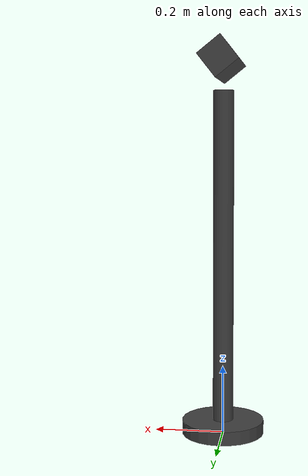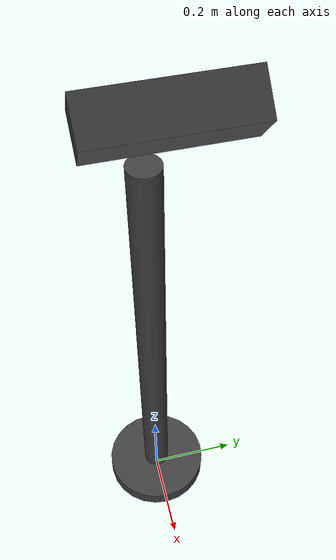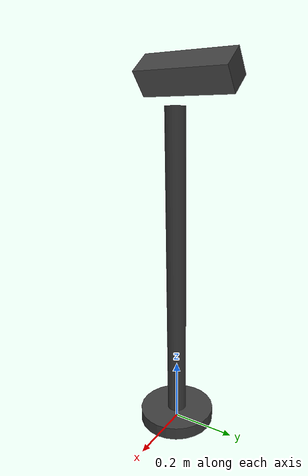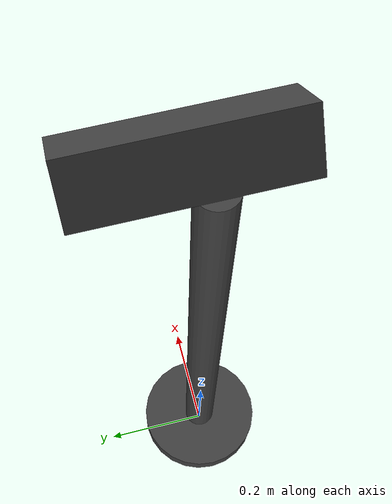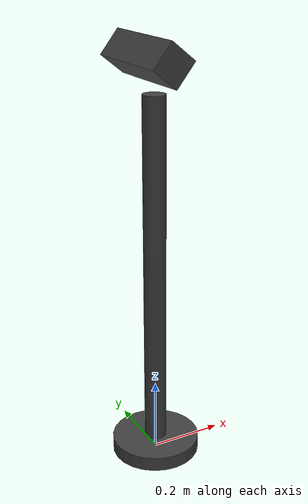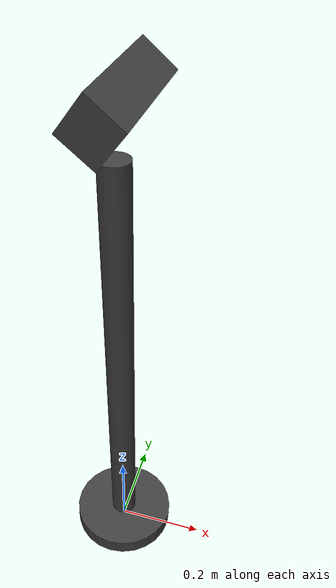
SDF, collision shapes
<?xml version="1.0" ?>
<sdf version="1.5">
  <model name="kinect">
    <pose>0 0 0 0 0 0</pose>
    <link name="link">
      <inertial>
        <mass>1.0</mass>
        <inertia>
          <ixx>0.085</ixx>
          <iyy>0.085</iyy>
          <izz>0.001</izz>
          <ixy>0</ixy>
          <ixz>0</ixz>
          <iyz>0</iyz>
        </inertia>
      </inertial>
      <collision name="base_collision">
        <pose>0 0 0.02 0 0 0</pose>
        <geometry>
          <cylinder>
            <radius>0.12</radius>
            <length>0.04</length>
          </cylinder>
        </geometry>
      </collision>
      <collision name="pole_collision">
        <pose>0 0 0.5 0 0 0</pose>
        <geometry>
          <cylinder>
            <radius>0.03</radius>
            <length>1.0</length>
          </cylinder>
        </geometry>
      </collision>
      <collision name="sensor_collision">
        <pose>0 0.04 1.08 0 -0.9 0</pose>
        <geometry>
          <box>
            <size>0.08 0.28 0.08</size>
          </box>
        </geometry>
      </collision>
      <visual name="base_visual">
        <pose>0 0 0.02 0 0 0</pose>
        <geometry>
          <cylinder>
            <radius>0.12</radius>
            <length>0.04</length>
          </cylinder>
        </geometry>
        <material>
          <ambient>0.2 0.2 0.2 1</ambient>
          <diffuse>0.25 0.25 0.25 1</diffuse>
        </material>
      </visual>
      <visual name="pole_visual">
        <pose>0 0 0.5 0 0 0</pose>
        <geometry>
          <cylinder>
            <radius>0.03</radius>
            <length>1.0</length>
          </cylinder>
        </geometry>
        <material>
          <ambient>0.3 0.3 0.3 1</ambient>
          <diffuse>0.4 0.4 0.4 1</diffuse>
        </material>
      </visual>
      <visual name="sensor_visual">
        <pose>0 0.04 1.08 0 -0.9 0</pose>
        <geometry>
          <mesh>
            <uri>model://kinect/meshes/kinect.dae</uri>
          </mesh>
        </geometry>
        <material>
          <ambient>0.05 0.05 0.05 1</ambient>
          <diffuse>0.1 0.1 0.1 1</diffuse>
        </material>
      </visual>
      <sensor name="camera" type="depth">
        <pose>0 0.04 1.08 0 -0.9 0</pose>
        <update_rate>20</update_rate>
        <camera>
          <horizontal_fov>1.047198</horizontal_fov>
          <image>
            <width>640</width>
            <height>480</height>
            <format>R8G8B8</format>
          </image>
          <clip>
            <near>0.05</near>
            <far>3</far>
          </clip>
        </camera>
        <plugin name="camera_plugin" filename="libgazebo_ros_openni_kinect.so">
          <baseline>0.2</baseline>
          <alwaysOn>true</alwaysOn>
          <updateRate>0.0</updateRate>
          <cameraName>camera_ir</cameraName>
          <imageTopicName>/camera/color/image_raw</imageTopicName>
          <cameraInfoTopicName>/camera/color/camera_info</cameraInfoTopicName>
          <depthImageTopicName>/camera/depth/image_raw</depthImageTopicName>
          <depthImageCameraInfoTopicName>/camera/depth/camera_info</depthImageCameraInfoTopicName>
          <pointCloudTopicName>/camera/depth/points</pointCloudTopicName>
          <frameName>camera_link</frameName>
          <pointCloudCutoff>0.5</pointCloudCutoff>
          <pointCloudCutoffMax>3.0</pointCloudCutoffMax>
          <distortionK1>0</distortionK1>
          <distortionK2>0</distortionK2>
          <distortionK3>0</distortionK3>
          <distortionT1>0</distortionT1>
          <distortionT2>0</distortionT2>
          <CxPrime>0</CxPrime>
          <Cx>0</Cx>
          <Cy>0</Cy>
          <focalLength>0</focalLength>
          <hackBaseline>0</hackBaseline>
        </plugin>
      </sensor>
    </link>
  </model>
</sdf>
